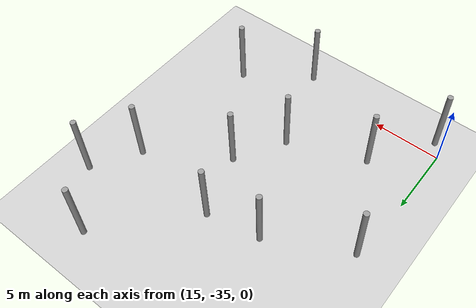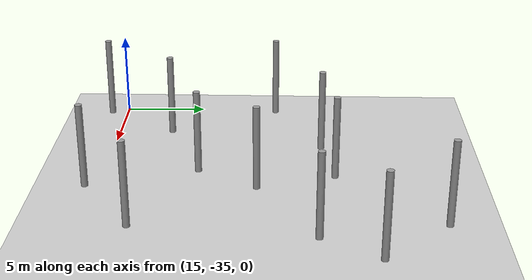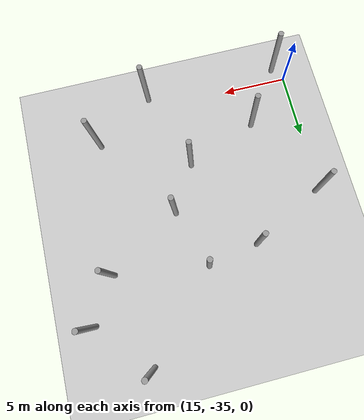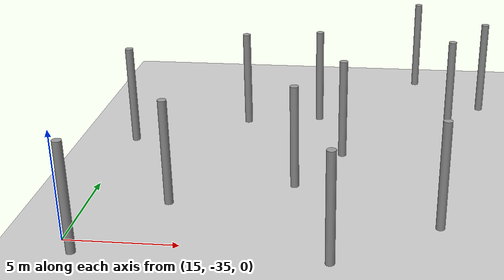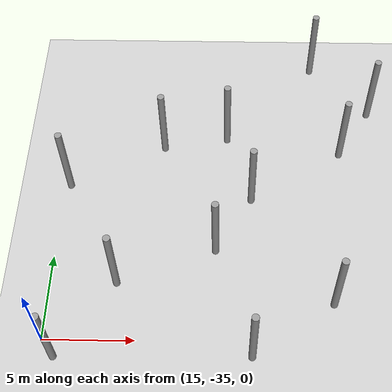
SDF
<sdf version="1.6">
 <world name="default">
  <model name="ground_plane">
   <static>1</static>
   <link name="link">
    <collision name="collision">
     <geometry><plane><normal>0 0 1</normal><size>100 100</size></plane></geometry>
     <surface><friction><ode><mu>100</mu><mu2>50</mu2></ode></friction></surface>
    </collision>
    <visual name="visual">
     <cast_shadows>0</cast_shadows>
     <geometry><plane><normal>0 0 1</normal><size>100 100</size></plane></geometry>
     <material>
      <script><uri>file://media/materials/scripts/gazebo.material</uri><name>Gazebo/Grey</name></script>
     </material>
    </visual>
   </link>
  </model>
  <model name="empty_pillars_9">
   <link name="link">
    <inertial>
     <mass>1</mass>
     <inertia><ixx>0.145833</ixx><ixy>0</ixy><ixz>0</ixz><iyy>0.145833</iyy><iyz>0</iyz><izz>0.125</izz></inertia>
    </inertial>
    <visual name="visual">
     <geometry><cylinder><radius>0.2</radius><length>5</length></cylinder></geometry>
     <material>
      <script><name>Gazebo/Grey</name><uri>file://media/materials/scripts/gazebo.material</uri></script>
      <shader type="vertex"><normal_map>__default__</normal_map></shader>
      <ambient>0.3 0.3 0.3 1</ambient>
      <diffuse>0.7 0.7 0.7 1</diffuse>
      <specular>0.01 0.01 0.01 1</specular>
      <emissive>0 0 0 1</emissive>
     </material>
    </visual>
    <collision name="collision">
     <geometry><cylinder><radius>0.05</radius><length>5</length></cylinder></geometry>
     <surface>
      <friction>
       <ode><mu>1</mu><mu2>1</mu2><fdir1>0 0 0</fdir1><slip1>0</slip1><slip2>0</slip2></ode>
       <torsional>
        <coefficient>1</coefficient>
        <patch_radius>0</patch_radius>
        <surface_radius>0</surface_radius>
        <use_patch_radius>1</use_patch_radius>
        <ode><slip>0</slip></ode>
       </torsional>
      </friction>
      <bounce><restitution_coefficient>0</restitution_coefficient><threshold>1e+06</threshold></bounce>
      <contact>
       <collide_without_contact>0</collide_without_contact>
       <collide_without_contact_bitmask>1</collide_without_contact_bitmask>
       <collide_bitmask>1</collide_bitmask>
       <ode>
        <soft_cfm>0</soft_cfm>
        <soft_erp>0.2</soft_erp>
        <kp>1e+13</kp>
        <kd>1</kd>
        <max_vel>0.01</max_vel>
        <min_depth>0</min_depth>
       </ode>
       <bullet>
        <split_impulse>1</split_impulse>
        <split_impulse_penetration_threshold>-0.01</split_impulse_penetration_threshold>
        <soft_cfm>0</soft_cfm>
        <soft_erp>0.2</soft_erp>
        <kp>1e+13</kp>
        <kd>1</kd>
       </bullet>
      </contact>
     </surface>
    </collision>
   </link>
   <model name="empty_pillar">
    <link name="link">
     <inertial>
      <mass>1</mass>
      <inertia><ixx>0.145833</ixx><ixy>0</ixy><ixz>0</ixz><iyy>0.145833</iyy><iyz>0</iyz><izz>0.125</izz></inertia>
     </inertial>
     <visual name="visual">
      <geometry><cylinder><radius>0.2</radius><length>5</length></cylinder></geometry>
      <material>
       <script><name>Gazebo/Grey</name><uri>file://media/materials/scripts/gazebo.material</uri></script>
       <shader type="vertex"><normal_map>__default__</normal_map></shader>
       <ambient>0.3 0.3 0.3 1</ambient>
       <diffuse>0.7 0.7 0.7 1</diffuse>
       <specular>0.01 0.01 0.01 1</specular>
       <emissive>0 0 0 1</emissive>
      </material>
     </visual>
     <collision name="collision">
      <geometry><cylinder><radius>0.05</radius><length>5</length></cylinder></geometry>
      <surface>
       <friction>
        <ode><mu>1</mu><mu2>1</mu2><fdir1>0 0 0</fdir1><slip1>0</slip1><slip2>0</slip2></ode>
        <torsional>
         <coefficient>1</coefficient>
         <patch_radius>0</patch_radius>
         <surface_radius>0</surface_radius>
         <use_patch_radius>1</use_patch_radius>
         <ode><slip>0</slip></ode>
        </torsional>
       </friction>
       <bounce><restitution_coefficient>0</restitution_coefficient><threshold>1e+06</threshold></bounce>
       <contact>
        <collide_without_contact>0</collide_without_contact>
        <collide_without_contact_bitmask>1</collide_without_contact_bitmask>
        <collide_bitmask>1</collide_bitmask>
        <ode>
         <soft_cfm>0</soft_cfm>
         <soft_erp>0.2</soft_erp>
         <kp>1e+13</kp>
         <kd>1</kd>
         <max_vel>0.01</max_vel>
         <min_depth>0</min_depth>
        </ode>
        <bullet>
         <split_impulse>1</split_impulse>
         <split_impulse_penetration_threshold>-0.01</split_impulse_penetration_threshold>
         <soft_cfm>0</soft_cfm>
         <soft_erp>0.2</soft_erp>
         <kp>1e+13</kp>
         <kd>1</kd>
        </bullet>
       </contact>
      </surface>
     </collision>
    </link>
    <static>0</static>
    <pose>-3.84527 -0.717439 0 0 -0 0</pose>
   </model>
   <model name="empty_pillar_clone">
    <link name="link">
     <inertial>
      <mass>1</mass>
      <inertia><ixx>0.145833</ixx><ixy>0</ixy><ixz>0</ixz><iyy>0.145833</iyy><iyz>0</iyz><izz>0.125</izz></inertia>
     </inertial>
     <visual name="visual">
      <geometry><cylinder><radius>0.2</radius><length>5</length></cylinder></geometry>
      <material>
       <script><name>Gazebo/Grey</name><uri>file://media/materials/scripts/gazebo.material</uri></script>
       <shader type="vertex"><normal_map>__default__</normal_map></shader>
       <ambient>0.3 0.3 0.3 1</ambient>
       <diffuse>0.7 0.7 0.7 1</diffuse>
       <specular>0.01 0.01 0.01 1</specular>
       <emissive>0 0 0 1</emissive>
      </material>
     </visual>
     <collision name="collision">
      <geometry><cylinder><radius>0.05</radius><length>5</length></cylinder></geometry>
      <surface>
       <friction>
        <ode><mu>1</mu><mu2>1</mu2><fdir1>0 0 0</fdir1><slip1>0</slip1><slip2>0</slip2></ode>
        <torsional>
         <coefficient>1</coefficient>
         <patch_radius>0</patch_radius>
         <surface_radius>0</surface_radius>
         <use_patch_radius>1</use_patch_radius>
         <ode><slip>0</slip></ode>
        </torsional>
       </friction>
       <bounce><restitution_coefficient>0</restitution_coefficient><threshold>1e+06</threshold></bounce>
       <contact>
        <collide_without_contact>0</collide_without_contact>
        <collide_without_contact_bitmask>1</collide_without_contact_bitmask>
        <collide_bitmask>1</collide_bitmask>
        <ode>
         <soft_cfm>0</soft_cfm>
         <soft_erp>0.2</soft_erp>
         <kp>1e+13</kp>
         <kd>1</kd>
         <max_vel>0.01</max_vel>
         <min_depth>0</min_depth>
        </ode>
        <bullet>
         <split_impulse>1</split_impulse>
         <split_impulse_penetration_threshold>-0.01</split_impulse_penetration_threshold>
         <soft_cfm>0</soft_cfm>
         <soft_erp>0.2</soft_erp>
         <kp>1e+13</kp>
         <kd>1</kd>
        </bullet>
       </contact>
      </surface>
     </collision>
    </link>
    <static>0</static>
    <pose>1.47843 -4.49529 0 0 -0 0</pose>
   </model>
   <model name="empty_pillar_clone_1">
    <link name="link">
     <inertial>
      <mass>1</mass>
      <inertia><ixx>0.145833</ixx><ixy>0</ixy><ixz>0</ixz><iyy>0.145833</iyy><iyz>0</iyz><izz>0.125</izz></inertia>
     </inertial>
     <visual name="visual">
      <geometry><cylinder><radius>0.2</radius><length>5</length></cylinder></geometry>
      <material>
       <script><name>Gazebo/Grey</name><uri>file://media/materials/scripts/gazebo.material</uri></script>
       <shader type="vertex"><normal_map>__default__</normal_map></shader>
       <ambient>0.3 0.3 0.3 1</ambient>
       <diffuse>0.7 0.7 0.7 1</diffuse>
       <specular>0.01 0.01 0.01 1</specular>
       <emissive>0 0 0 1</emissive>
      </material>
     </visual>
     <collision name="collision">
      <geometry><cylinder><radius>0.05</radius><length>5</length></cylinder></geometry>
      <surface>
       <friction>
        <ode><mu>1</mu><mu2>1</mu2><fdir1>0 0 0</fdir1><slip1>0</slip1><slip2>0</slip2></ode>
        <torsional>
         <coefficient>1</coefficient>
         <patch_radius>0</patch_radius>
         <surface_radius>0</surface_radius>
         <use_patch_radius>1</use_patch_radius>
         <ode><slip>0</slip></ode>
        </torsional>
       </friction>
       <bounce><restitution_coefficient>0</restitution_coefficient><threshold>1e+06</threshold></bounce>
       <contact>
        <collide_without_contact>0</collide_without_contact>
        <collide_without_contact_bitmask>1</collide_without_contact_bitmask>
        <collide_bitmask>1</collide_bitmask>
        <ode>
         <soft_cfm>0</soft_cfm>
         <soft_erp>0.2</soft_erp>
         <kp>1e+13</kp>
         <kd>1</kd>
         <max_vel>0.01</max_vel>
         <min_depth>0</min_depth>
        </ode>
        <bullet>
         <split_impulse>1</split_impulse>
         <split_impulse_penetration_threshold>-0.01</split_impulse_penetration_threshold>
         <soft_cfm>0</soft_cfm>
         <soft_erp>0.2</soft_erp>
         <kp>1e+13</kp>
         <kd>1</kd>
        </bullet>
       </contact>
      </surface>
     </collision>
    </link>
    <static>0</static>
    <pose>8.92248 2.14838 0 0 -0 0</pose>
   </model>
   <model name="empty_pillar_clone_13">
    <link name="link">
     <inertial>
      <mass>1</mass>
      <inertia><ixx>0.145833</ixx><ixy>0</ixy><ixz>0</ixz><iyy>0.145833</iyy><iyz>0</iyz><izz>0.125</izz></inertia>
     </inertial>
     <visual name="visual">
      <geometry><cylinder><radius>0.2</radius><length>5</length></cylinder></geometry>
      <material>
       <script><name>Gazebo/Grey</name><uri>file://media/materials/scripts/gazebo.material</uri></script>
       <shader type="vertex"><normal_map>__default__</normal_map></shader>
       <ambient>0.3 0.3 0.3 1</ambient>
       <diffuse>0.7 0.7 0.7 1</diffuse>
       <specular>0.01 0.01 0.01 1</specular>
       <emissive>0 0 0 1</emissive>
      </material>
     </visual>
     <collision name="collision">
      <geometry><cylinder><radius>0.05</radius><length>5</length></cylinder></geometry>
      <surface>
       <friction>
        <ode><mu>1</mu><mu2>1</mu2><fdir1>0 0 0</fdir1><slip1>0</slip1><slip2>0</slip2></ode>
        <torsional>
         <coefficient>1</coefficient>
         <patch_radius>0</patch_radius>
         <surface_radius>0</surface_radius>
         <use_patch_radius>1</use_patch_radius>
         <ode><slip>0</slip></ode>
        </torsional>
       </friction>
       <bounce><restitution_coefficient>0</restitution_coefficient><threshold>1e+06</threshold></bounce>
       <contact>
        <collide_without_contact>0</collide_without_contact>
        <collide_without_contact_bitmask>1</collide_without_contact_bitmask>
        <collide_bitmask>1</collide_bitmask>
        <ode>
         <soft_cfm>0</soft_cfm>
         <soft_erp>0.2</soft_erp>
         <kp>1e+13</kp>
         <kd>1</kd>
         <max_vel>0.01</max_vel>
         <min_depth>0</min_depth>
        </ode>
        <bullet>
         <split_impulse>1</split_impulse>
         <split_impulse_penetration_threshold>-0.01</split_impulse_penetration_threshold>
         <soft_cfm>0</soft_cfm>
         <soft_erp>0.2</soft_erp>
         <kp>1e+13</kp>
         <kd>1</kd>
        </bullet>
       </contact>
      </surface>
     </collision>
    </link>
    <static>0</static>
    <pose>-9.01464 -14.4259 0 0 -0 0</pose>
   </model>
   <model name="empty_pillar_clone_15">
    <link name="link">
     <inertial>
      <mass>1</mass>
      <inertia><ixx>0.145833</ixx><ixy>0</ixy><ixz>0</ixz><iyy>0.145833</iyy><iyz>0</iyz><izz>0.125</izz></inertia>
     </inertial>
     <visual name="visual">
      <geometry><cylinder><radius>0.2</radius><length>5</length></cylinder></geometry>
      <material>
       <script><name>Gazebo/Grey</name><uri>file://media/materials/scripts/gazebo.material</uri></script>
       <shader type="vertex"><normal_map>__default__</normal_map></shader>
       <ambient>0.3 0.3 0.3 1</ambient>
       <diffuse>0.7 0.7 0.7 1</diffuse>
       <specular>0.01 0.01 0.01 1</specular>
       <emissive>0 0 0 1</emissive>
      </material>
     </visual>
     <collision name="collision">
      <geometry><cylinder><radius>0.05</radius><length>5</length></cylinder></geometry>
      <surface>
       <friction>
        <ode><mu>1</mu><mu2>1</mu2><fdir1>0 0 0</fdir1><slip1>0</slip1><slip2>0</slip2></ode>
        <torsional>
         <coefficient>1</coefficient>
         <patch_radius>0</patch_radius>
         <surface_radius>0</surface_radius>
         <use_patch_radius>1</use_patch_radius>
         <ode><slip>0</slip></ode>
        </torsional>
       </friction>
       <bounce><restitution_coefficient>0</restitution_coefficient><threshold>1e+06</threshold></bounce>
       <contact>
        <collide_without_contact>0</collide_without_contact>
        <collide_without_contact_bitmask>1</collide_without_contact_bitmask>
        <collide_bitmask>1</collide_bitmask>
        <ode>
         <soft_cfm>0</soft_cfm>
         <soft_erp>0.2</soft_erp>
         <kp>1e+13</kp>
         <kd>1</kd>
         <max_vel>0.01</max_vel>
         <min_depth>0</min_depth>
        </ode>
        <bullet>
         <split_impulse>1</split_impulse>
         <split_impulse_penetration_threshold>-0.01</split_impulse_penetration_threshold>
         <soft_cfm>0</soft_cfm>
         <soft_erp>0.2</soft_erp>
         <kp>1e+13</kp>
         <kd>1</kd>
        </bullet>
       </contact>
      </surface>
     </collision>
    </link>
    <static>0</static>
    <pose>-9.37193 -3.58732 0 0 -0 0</pose>
   </model>
   <model name="empty_pillar_clone_2">
    <link name="link">
     <inertial>
      <mass>1</mass>
      <inertia><ixx>0.145833</ixx><ixy>0</ixy><ixz>0</ixz><iyy>0.145833</iyy><iyz>0</iyz><izz>0.125</izz></inertia>
     </inertial>
     <visual name="visual">
      <geometry><cylinder><radius>0.2</radius><length>5</length></cylinder></geometry>
      <material>
       <script><name>Gazebo/Grey</name><uri>file://media/materials/scripts/gazebo.material</uri></script>
       <shader type="vertex"><normal_map>__default__</normal_map></shader>
       <ambient>0.3 0.3 0.3 1</ambient>
       <diffuse>0.7 0.7 0.7 1</diffuse>
       <specular>0.01 0.01 0.01 1</specular>
       <emissive>0 0 0 1</emissive>
      </material>
     </visual>
     <collision name="collision">
      <geometry><cylinder><radius>0.05</radius><length>5</length></cylinder></geometry>
      <surface>
       <friction>
        <ode><mu>1</mu><mu2>1</mu2><fdir1>0 0 0</fdir1><slip1>0</slip1><slip2>0</slip2></ode>
        <torsional>
         <coefficient>1</coefficient>
         <patch_radius>0</patch_radius>
         <surface_radius>0</surface_radius>
         <use_patch_radius>1</use_patch_radius>
         <ode><slip>0</slip></ode>
        </torsional>
       </friction>
       <bounce><restitution_coefficient>0</restitution_coefficient><threshold>1e+06</threshold></bounce>
       <contact>
        <collide_without_contact>0</collide_without_contact>
        <collide_without_contact_bitmask>1</collide_without_contact_bitmask>
        <collide_bitmask>1</collide_bitmask>
        <ode>
         <soft_cfm>0</soft_cfm>
         <soft_erp>0.2</soft_erp>
         <kp>1e+13</kp>
         <kd>1</kd>
         <max_vel>0.01</max_vel>
         <min_depth>0</min_depth>
        </ode>
        <bullet>
         <split_impulse>1</split_impulse>
         <split_impulse_penetration_threshold>-0.01</split_impulse_penetration_threshold>
         <soft_cfm>0</soft_cfm>
         <soft_erp>0.2</soft_erp>
         <kp>1e+13</kp>
         <kd>1</kd>
        </bullet>
       </contact>
      </surface>
     </collision>
    </link>
    <static>0</static>
    <pose>6.92427 -1.06221 0 0 -0 0</pose>
   </model>
   <model name="empty_pillar_clone_3">
    <link name="link">
     <inertial>
      <mass>1</mass>
      <inertia><ixx>0.145833</ixx><ixy>0</ixy><ixz>0</ixz><iyy>0.145833</iyy><iyz>0</iyz><izz>0.125</izz></inertia>
     </inertial>
     <visual name="visual">
      <geometry><cylinder><radius>0.2</radius><length>5</length></cylinder></geometry>
      <material>
       <script><name>Gazebo/Grey</name><uri>file://media/materials/scripts/gazebo.material</uri></script>
       <shader type="vertex"><normal_map>__default__</normal_map></shader>
       <ambient>0.3 0.3 0.3 1</ambient>
       <diffuse>0.7 0.7 0.7 1</diffuse>
       <specular>0.01 0.01 0.01 1</specular>
       <emissive>0 0 0 1</emissive>
      </material>
     </visual>
     <collision name="collision">
      <geometry><cylinder><radius>0.05</radius><length>5</length></cylinder></geometry>
      <surface>
       <friction>
        <ode><mu>1</mu><mu2>1</mu2><fdir1>0 0 0</fdir1><slip1>0</slip1><slip2>0</slip2></ode>
        <torsional>
         <coefficient>1</coefficient>
         <patch_radius>0</patch_radius>
         <surface_radius>0</surface_radius>
         <use_patch_radius>1</use_patch_radius>
         <ode><slip>0</slip></ode>
        </torsional>
       </friction>
       <bounce><restitution_coefficient>0</restitution_coefficient><threshold>1e+06</threshold></bounce>
       <contact>
        <collide_without_contact>0</collide_without_contact>
        <collide_without_contact_bitmask>1</collide_without_contact_bitmask>
        <collide_bitmask>1</collide_bitmask>
        <ode>
         <soft_cfm>0</soft_cfm>
         <soft_erp>0.2</soft_erp>
         <kp>1e+13</kp>
         <kd>1</kd>
         <max_vel>0.01</max_vel>
         <min_depth>0</min_depth>
        </ode>
        <bullet>
         <split_impulse>1</split_impulse>
         <split_impulse_penetration_threshold>-0.01</split_impulse_penetration_threshold>
         <soft_cfm>0</soft_cfm>
         <soft_erp>0.2</soft_erp>
         <kp>1e+13</kp>
         <kd>1</kd>
        </bullet>
       </contact>
      </surface>
     </collision>
    </link>
    <static>0</static>
    <pose>5.99316 -11.2211 0 0 -0 0</pose>
   </model>
   <model name="empty_pillar_clone_4">
    <link name="link">
     <inertial>
      <mass>1</mass>
      <inertia><ixx>0.145833</ixx><ixy>0</ixy><ixz>0</ixz><iyy>0.145833</iyy><iyz>0</iyz><izz>0.125</izz></inertia>
     </inertial>
     <visual name="visual">
      <geometry><cylinder><radius>0.2</radius><length>5</length></cylinder></geometry>
      <material>
       <script><name>Gazebo/Grey</name><uri>file://media/materials/scripts/gazebo.material</uri></script>
       <shader type="vertex"><normal_map>__default__</normal_map></shader>
       <ambient>0.3 0.3 0.3 1</ambient>
       <diffuse>0.7 0.7 0.7 1</diffuse>
       <specular>0.01 0.01 0.01 1</specular>
       <emissive>0 0 0 1</emissive>
      </material>
     </visual>
     <collision name="collision">
      <geometry><cylinder><radius>0.05</radius><length>5</length></cylinder></geometry>
      <surface>
       <friction>
        <ode><mu>1</mu><mu2>1</mu2><fdir1>0 0 0</fdir1><slip1>0</slip1><slip2>0</slip2></ode>
        <torsional>
         <coefficient>1</coefficient>
         <patch_radius>0</patch_radius>
         <surface_radius>0</surface_radius>
         <use_patch_radius>1</use_patch_radius>
         <ode><slip>0</slip></ode>
        </torsional>
       </friction>
       <bounce><restitution_coefficient>0</restitution_coefficient><threshold>1e+06</threshold></bounce>
       <contact>
        <collide_without_contact>0</collide_without_contact>
        <collide_without_contact_bitmask>1</collide_without_contact_bitmask>
        <collide_bitmask>1</collide_bitmask>
        <ode>
         <soft_cfm>0</soft_cfm>
         <soft_erp>0.2</soft_erp>
         <kp>1e+13</kp>
         <kd>1</kd>
         <max_vel>0.01</max_vel>
         <min_depth>0</min_depth>
        </ode>
        <bullet>
         <split_impulse>1</split_impulse>
         <split_impulse_penetration_threshold>-0.01</split_impulse_penetration_threshold>
         <soft_cfm>0</soft_cfm>
         <soft_erp>0.2</soft_erp>
         <kp>1e+13</kp>
         <kd>1</kd>
        </bullet>
       </contact>
      </surface>
     </collision>
    </link>
    <static>0</static>
    <pose>1.48428 -14.2998 0 0 -0 0</pose>
   </model>
   <model name="empty_pillar_clone_47">
    <link name="link">
     <inertial>
      <mass>1</mass>
      <inertia><ixx>0.145833</ixx><ixy>0</ixy><ixz>0</ixz><iyy>0.145833</iyy><iyz>0</iyz><izz>0.125</izz></inertia>
     </inertial>
     <visual name="visual">
      <geometry><cylinder><radius>0.2</radius><length>5</length></cylinder></geometry>
      <material>
       <script><name>Gazebo/Grey</name><uri>file://media/materials/scripts/gazebo.material</uri></script>
       <shader type="vertex"><normal_map>__default__</normal_map></shader>
       <ambient>0.3 0.3 0.3 1</ambient>
       <diffuse>0.7 0.7 0.7 1</diffuse>
       <specular>0.01 0.01 0.01 1</specular>
       <emissive>0 0 0 1</emissive>
      </material>
     </visual>
     <collision name="collision">
      <geometry><cylinder><radius>0.05</radius><length>5</length></cylinder></geometry>
      <surface>
       <friction>
        <ode><mu>1</mu><mu2>1</mu2><fdir1>0 0 0</fdir1><slip1>0</slip1><slip2>0</slip2></ode>
        <torsional>
         <coefficient>1</coefficient>
         <patch_radius>0</patch_radius>
         <surface_radius>0</surface_radius>
         <use_patch_radius>1</use_patch_radius>
         <ode><slip>0</slip></ode>
        </torsional>
       </friction>
       <bounce><restitution_coefficient>0</restitution_coefficient><threshold>1e+06</threshold></bounce>
       <contact>
        <collide_without_contact>0</collide_without_contact>
        <collide_without_contact_bitmask>1</collide_without_contact_bitmask>
        <collide_bitmask>1</collide_bitmask>
        <ode>
         <soft_cfm>0</soft_cfm>
         <soft_erp>0.2</soft_erp>
         <kp>1e+13</kp>
         <kd>1</kd>
         <max_vel>0.01</max_vel>
         <min_depth>0</min_depth>
        </ode>
        <bullet>
         <split_impulse>1</split_impulse>
         <split_impulse_penetration_threshold>-0.01</split_impulse_penetration_threshold>
         <soft_cfm>0</soft_cfm>
         <soft_erp>0.2</soft_erp>
         <kp>1e+13</kp>
         <kd>1</kd>
        </bullet>
       </contact>
      </surface>
     </collision>
    </link>
    <static>0</static>
    <pose>-0.569433 -7.97346 0 0 -0 0</pose>
   </model>
   <model name="empty_pillar_clone_5">
    <link name="link">
     <inertial>
      <mass>1</mass>
      <inertia><ixx>0.145833</ixx><ixy>0</ixy><ixz>0</ixz><iyy>0.145833</iyy><iyz>0</iyz><izz>0.125</izz></inertia>
     </inertial>
     <visual name="visual">
      <geometry><cylinder><radius>0.2</radius><length>5</length></cylinder></geometry>
      <material>
       <script><name>Gazebo/Grey</name><uri>file://media/materials/scripts/gazebo.material</uri></script>
       <shader type="vertex"><normal_map>__default__</normal_map></shader>
       <ambient>0.3 0.3 0.3 1</ambient>
       <diffuse>0.7 0.7 0.7 1</diffuse>
       <specular>0.01 0.01 0.01 1</specular>
       <emissive>0 0 0 1</emissive>
      </material>
     </visual>
     <collision name="collision">
      <geometry><cylinder><radius>0.05</radius><length>5</length></cylinder></geometry>
      <surface>
       <friction>
        <ode><mu>1</mu><mu2>1</mu2><fdir1>0 0 0</fdir1><slip1>0</slip1><slip2>0</slip2></ode>
        <torsional>
         <coefficient>1</coefficient>
         <patch_radius>0</patch_radius>
         <surface_radius>0</surface_radius>
         <use_patch_radius>1</use_patch_radius>
         <ode><slip>0</slip></ode>
        </torsional>
       </friction>
       <bounce><restitution_coefficient>0</restitution_coefficient><threshold>1e+06</threshold></bounce>
       <contact>
        <collide_without_contact>0</collide_without_contact>
        <collide_without_contact_bitmask>1</collide_without_contact_bitmask>
        <collide_bitmask>1</collide_bitmask>
        <ode>
         <soft_cfm>0</soft_cfm>
         <soft_erp>0.2</soft_erp>
         <kp>1e+13</kp>
         <kd>1</kd>
         <max_vel>0.01</max_vel>
         <min_depth>0</min_depth>
        </ode>
        <bullet>
         <split_impulse>1</split_impulse>
         <split_impulse_penetration_threshold>-0.01</split_impulse_penetration_threshold>
         <soft_cfm>0</soft_cfm>
         <soft_erp>0.2</soft_erp>
         <kp>1e+13</kp>
         <kd>1</kd>
        </bullet>
       </contact>
      </surface>
     </collision>
    </link>
    <static>0</static>
    <pose>-6.03595 -10.0932 0 0 -0 0</pose>
   </model>
   <model name="empty_pillar_clone_57">
    <link name="link">
     <inertial>
      <mass>1</mass>
      <inertia><ixx>0.145833</ixx><ixy>0</ixy><ixz>0</ixz><iyy>0.145833</iyy><iyz>0</iyz><izz>0.125</izz></inertia>
     </inertial>
     <visual name="visual">
      <geometry><cylinder><radius>0.2</radius><length>5</length></cylinder></geometry>
      <material>
       <script><name>Gazebo/Grey</name><uri>file://media/materials/scripts/gazebo.material</uri></script>
       <shader type="vertex"><normal_map>__default__</normal_map></shader>
       <ambient>0.3 0.3 0.3 1</ambient>
       <diffuse>0.7 0.7 0.7 1</diffuse>
       <specular>0.01 0.01 0.01 1</specular>
       <emissive>0 0 0 1</emissive>
      </material>
     </visual>
     <collision name="collision">
      <geometry><cylinder><radius>0.05</radius><length>5</length></cylinder></geometry>
      <surface>
       <friction>
        <ode><mu>1</mu><mu2>1</mu2><fdir1>0 0 0</fdir1><slip1>0</slip1><slip2>0</slip2></ode>
        <torsional>
         <coefficient>1</coefficient>
         <patch_radius>0</patch_radius>
         <surface_radius>0</surface_radius>
         <use_patch_radius>1</use_patch_radius>
         <ode><slip>0</slip></ode>
        </torsional>
       </friction>
       <bounce><restitution_coefficient>0</restitution_coefficient><threshold>1e+06</threshold></bounce>
       <contact>
        <collide_without_contact>0</collide_without_contact>
        <collide_without_contact_bitmask>1</collide_without_contact_bitmask>
        <collide_bitmask>1</collide_bitmask>
        <ode>
         <soft_cfm>0</soft_cfm>
         <soft_erp>0.2</soft_erp>
         <kp>1e+13</kp>
         <kd>1</kd>
         <max_vel>0.01</max_vel>
         <min_depth>0</min_depth>
        </ode>
        <bullet>
         <split_impulse>1</split_impulse>
         <split_impulse_penetration_threshold>-0.01</split_impulse_penetration_threshold>
         <soft_cfm>0</soft_cfm>
         <soft_erp>0.2</soft_erp>
         <kp>1e+13</kp>
         <kd>1</kd>
        </bullet>
       </contact>
      </surface>
     </collision>
    </link>
    <static>0</static>
    <pose>5.4355 5.86468 0 0 -0 0</pose>
   </model>
   <static>0</static>
   <pose>24.7676 -21.5571 2.56943 0 -0 0</pose>
  </model>
 </world>
</sdf>
